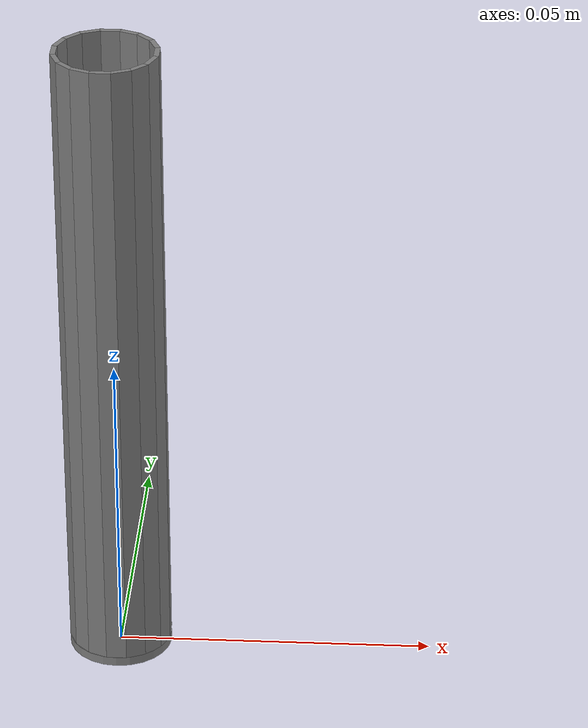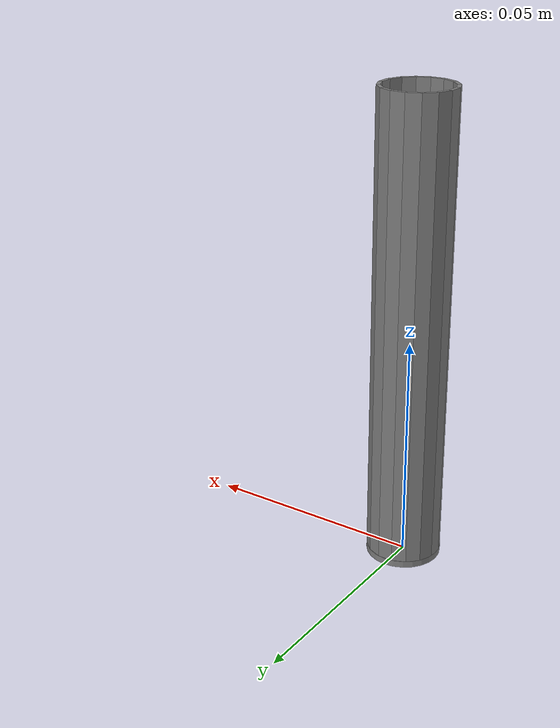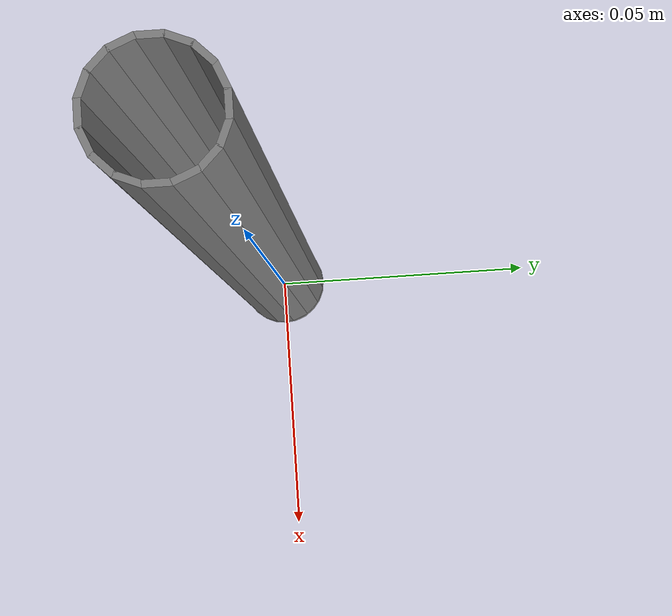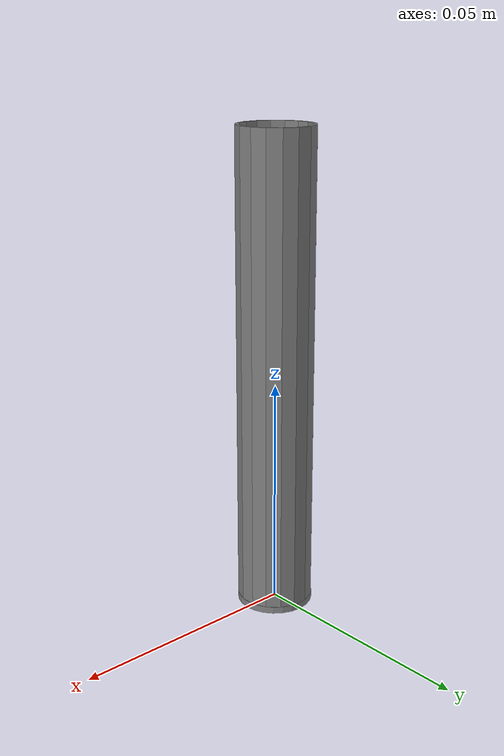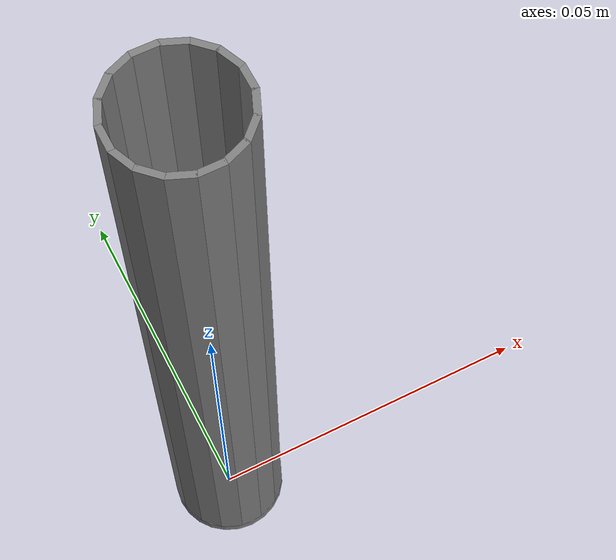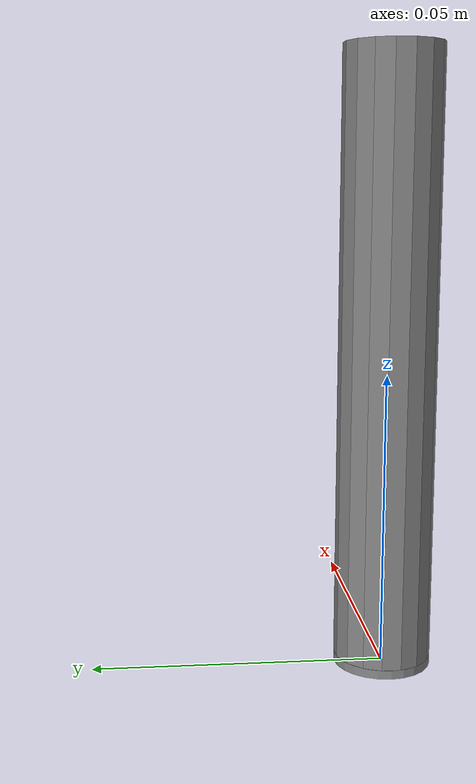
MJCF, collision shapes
<mujoco model="centrifuge_10ml">
  <compiler angle="radian" meshdir="../../assets/"/>

  <asset>
    <mesh name="centrifuge_10ml-visual_visual" file="container/centrifuge_10ml_vis/visual.obj" scale="0.001 0.001 0.001"/>
    <material name="centrifuge_10ml" rgba="1 1 1 0.2" />
  </asset>

  <worldbody>
    <body name="centrifuge_10ml">
      <geom size="0.00825 0.00075" pos="0 0 0.00075" type="cylinder" group="3"/>
      <geom type="mesh" contype="0" conaffinity="0" group="2" mesh="centrifuge_10ml-visual_visual" material="centrifuge_10ml"/>
      <frame>
        <geom size="0.0016095 0.000416834 0.05125" pos="0 0.00767464 0.05275" type="box" group="3"/>
      </frame>
      <frame>
        <geom size="0.0016095 0.000416834 0.05125" pos="0.00293696 0.00709045 0.05275" quat="0.980785 0 0 -0.19509" type="box" group="3"/>
      </frame>
      <frame>
        <geom size="0.0016095 0.000416834 0.05125" pos="0.00542679 0.00542679 0.05275" quat="0.92388 0 0 -0.382683" type="box" group="3"/>
      </frame>
      <frame>
        <geom size="0.0016095 0.000416834 0.05125" pos="0.00709045 0.00293696 0.05275" quat="0.83147 0 0 -0.55557" type="box" group="3"/>
      </frame>
      <frame>
        <geom size="0.0016095 0.000416834 0.05125" pos="0.00767464 0 0.05275" quat="0.707107 0 0 -0.707107" type="box" group="3"/>
      </frame>
      <frame>
        <geom size="0.0016095 0.000416834 0.05125" pos="0.00709045 -0.00293696 0.05275" quat="0.55557 0 0 -0.83147" type="box" group="3"/>
      </frame>
      <frame>
        <geom size="0.0016095 0.000416834 0.05125" pos="0.00542679 -0.00542679 0.05275" quat="0.382683 0 0 -0.92388" type="box" group="3"/>
      </frame>
      <frame>
        <geom size="0.0016095 0.000416834 0.05125" pos="0.00293696 -0.00709045 0.05275" quat="0.19509 0 0 -0.980785" type="box" group="3"/>
      </frame>
      <frame>
        <geom size="0.0016095 0.000416834 0.05125" pos="0 -0.00767464 0.05275" quat="0 0 0 -1" type="box" group="3"/>
      </frame>
      <frame>
        <geom size="0.0016095 0.000416834 0.05125" pos="-0.00293696 -0.00709045 0.05275" quat="-0.19509 0 0 -0.980785" type="box" group="3"/>
      </frame>
      <frame>
        <geom size="0.0016095 0.000416834 0.05125" pos="-0.00542679 -0.00542679 0.05275" quat="-0.382683 0 0 -0.92388" type="box" group="3"/>
      </frame>
      <frame>
        <geom size="0.0016095 0.000416834 0.05125" pos="-0.00709045 -0.00293696 0.05275" quat="-0.55557 0 0 -0.83147" type="box" group="3"/>
      </frame>
      <frame>
        <geom size="0.0016095 0.000416834 0.05125" pos="-0.00767464 0 0.05275" quat="-0.707107 0 0 -0.707107" type="box" group="3"/>
      </frame>
      <frame>
        <geom size="0.0016095 0.000416834 0.05125" pos="-0.00709045 0.00293696 0.05275" quat="-0.83147 0 0 -0.55557" type="box" group="3"/>
      </frame>
      <frame>
        <geom size="0.0016095 0.000416834 0.05125" pos="-0.00542679 0.00542679 0.05275" quat="-0.92388 0 0 -0.382683" type="box" group="3"/>
      </frame>
      <frame>
        <geom size="0.0016095 0.000416834 0.05125" pos="-0.00293696 0.00709045 0.05275" quat="-0.980785 0 0 -0.19509" type="box" group="3"/>
      </frame>
    </body>
  </worldbody>
</mujoco>
